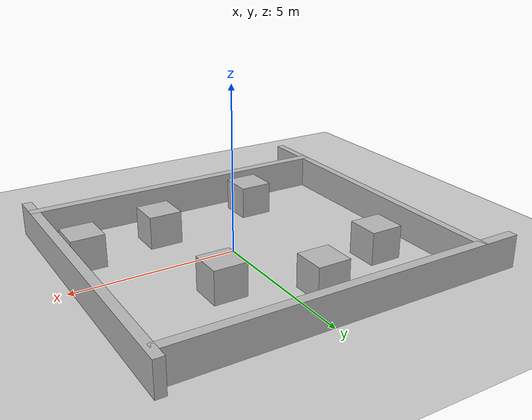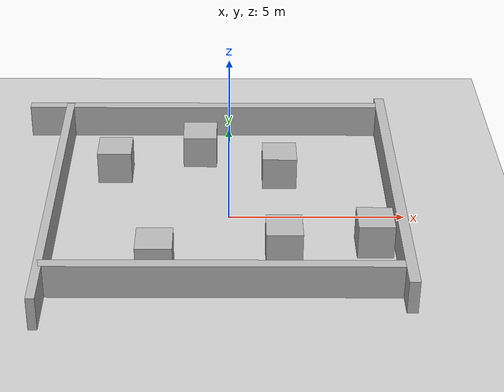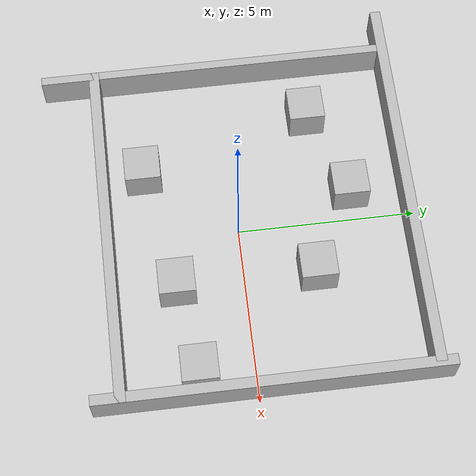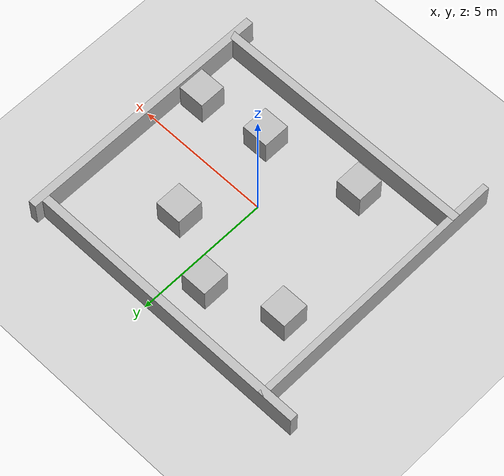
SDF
<sdf version="1.7">
 <world name="default">
  <model name="ground_plane">
   <static>1</static>
   <link name="link">
    <collision name="collision">
     <geometry><plane><normal>0 0 1</normal><size>100 100</size></plane></geometry>
     <surface>
      <contact><collide_bitmask>65535</collide_bitmask></contact>
      <friction><ode><mu>100</mu><mu2>50</mu2></ode></friction>
     </surface>
    </collision>
    <visual name="visual">
     <cast_shadows>0</cast_shadows>
     <geometry><plane><normal>0 0 1</normal><size>100 100</size></plane></geometry>
     <material>
      <script><uri>file://media/materials/scripts/gazebo.material</uri><name>Gazebo/Grey</name></script>
     </material>
    </visual>
   </link>
  </model>
  <light name="sun" type="directional">
   <pose>0 0 10 0 -0 0</pose>
   <diffuse>0.8 0.8 0.8 1</diffuse>
   <specular>0.2 0.2 0.2 1</specular>
   <attenuation>
    <range>1000</range>
    <constant>0.9</constant>
    <linear>0.01</linear>
    <quadratic>0.001</quadratic>
   </attenuation>
   <direction>-0.5 0.1 -0.9</direction>
   <spot><inner_angle>0</inner_angle><outer_angle>0</outer_angle><falloff>0</falloff></spot>
  </light>
  <gravity>0 0 -9.81</gravity>
  <physics name="default_physics" type="ode">
   <max_step_size>0.001</max_step_size>
   <real_time_factor>1</real_time_factor>
   <real_time_update_rate>1000</real_time_update_rate>
  </physics>
  <scene><ambient>0.4 0.4 0.4 1</ambient><background>0.7 0.7 0.7 1</background><shadows>1</shadows></scene>
  <model name="obstacle_2">
   <static>1</static>
   <pose>1.48313 2.0141 0.5 0 -0 0</pose>
   <link name="link">
    <collision name="collision"><geometry><box><size>1 1 1</size></box></geometry></collision>
    <visual name="visual"><geometry><box><size>1 1 1</size></box></geometry></visual>
   </link>
  </model>
  <model name="obstacle_3">
   <static>1</static>
   <pose>4 -1.5 0.5 0 -0 0</pose>
   <link name="link">
    <collision name="collision"><geometry><box><size>1 1 1</size></box></geometry></collision>
    <visual name="visual"><geometry><box><size>1 1 1</size></box></geometry></visual>
   </link>
  </model>
  <model name="obstacle_4">
   <static>1</static>
   <pose>-0.871226 3.24533 0.5 0 -0 0</pose>
   <link name="link">
    <collision name="collision"><geometry><box><size>1 1 1</size></box></geometry></collision>
    <visual name="visual"><geometry><box><size>1 1 1</size></box></geometry></visual>
   </link>
  </model>
  <model name="obstacle_5">
   <static>1</static>
   <pose>-3.38103 2.33048 0.5 0 -0 0</pose>
   <link name="link">
    <collision name="collision"><geometry><box><size>1 1 1</size></box></geometry></collision>
    <visual name="visual"><geometry><box><size>1 1 1</size></box></geometry></visual>
   </link>
  </model>
  <model name="obstacle_7">
   <static>1</static>
   <pose>-2 -2.5 0.5 0 -0 0</pose>
   <link name="link">
    <collision name="collision"><geometry><box><size>1 1 1</size></box></geometry></collision>
    <visual name="visual"><geometry><box><size>1 1 1</size></box></geometry></visual>
   </link>
  </model>
  <model name="obstacle_8">
   <static>1</static>
   <pose>1.49781 -1.86702 0.5 0 -0 0</pose>
   <link name="link">
    <collision name="collision"><geometry><box><size>1 1 1</size></box></geometry></collision>
    <visual name="visual"><geometry><box><size>1 1 1</size></box></geometry></visual>
   </link>
  </model>
  <model name="wall_1">
   <static>1</static>
   <pose>-0.73626 4.81188 0.5 0 -0 0</pose>
   <link name="link">
    <collision name="collision"><geometry><box><size>10.9348 0.3 1</size></box></geometry></collision>
    <visual name="visual"><geometry><box><size>10.9348 0.3 1</size></box></geometry></visual>
   </link>
  </model>
  <model name="wall_2">
   <static>1</static>
   <pose>-0.104175 -3.63327 0.5 0 -0 0</pose>
   <link name="link">
    <collision name="collision"><geometry><box><size>9.94458 0.3 1</size></box></geometry></collision>
    <visual name="visual"><geometry><box><size>9.94458 0.3 1</size></box></geometry></visual>
   </link>
  </model>
  <magnetic_field>6e-06 2.3e-05 -4.2e-05</magnetic_field>
  <atmosphere type="adiabatic"/>
  <audio><device>default</device></audio>
  <spherical_coordinates>
   <surface_model>EARTH_WGS84</surface_model>
   <latitude_deg>0</latitude_deg>
   <longitude_deg>0</longitude_deg>
   <elevation>0</elevation>
   <heading_deg>0</heading_deg>
  </spherical_coordinates>
  <model name="wall_3">
   <link name="link">
    <visual name="visual">
     <geometry><box><size>0.297183 9.69025 1</size></box></geometry>
     <material><shader type="pixel"/></material>
    </visual>
    <collision name="collision">
     <geometry><box><size>0.297183 9.69025 1</size></box></geometry>
     <surface>
      <friction>
       <ode><mu>1</mu><mu2>1</mu2><fdir1>0 0 0</fdir1><slip1>0</slip1><slip2>0</slip2></ode>
       <torsional>
        <coefficient>1</coefficient>
        <patch_radius>0</patch_radius>
        <surface_radius>0</surface_radius>
        <use_patch_radius>1</use_patch_radius>
        <ode><slip>0</slip></ode>
       </torsional>
      </friction>
      <bounce><restitution_coefficient>0</restitution_coefficient><threshold>1e+06</threshold></bounce>
      <contact>
       <collide_without_contact>0</collide_without_contact>
       <collide_without_contact_bitmask>1</collide_without_contact_bitmask>
       <collide_bitmask>1</collide_bitmask>
       <ode>
        <soft_cfm>0</soft_cfm>
        <soft_erp>0.2</soft_erp>
        <kp>1e+13</kp>
        <kd>1</kd>
        <max_vel>0.01</max_vel>
        <min_depth>0</min_depth>
       </ode>
       <bullet>
        <split_impulse>1</split_impulse>
        <split_impulse_penetration_threshold>-0.01</split_impulse_penetration_threshold>
        <soft_cfm>0</soft_cfm>
        <soft_erp>0.2</soft_erp>
        <kp>1e+13</kp>
        <kd>1</kd>
       </bullet>
      </contact>
     </surface>
    </collision>
   </link>
   <static>1</static>
   <pose>4.72357 0.419514 0.5 0 -0 0</pose>
  </model>
  <model name="wall_4">
   <link name="link">
    <visual name="visual">
     <geometry><box><size>0.239698 10.0953 1</size></box></geometry>
     <material><shader type="pixel"/></material>
    </visual>
    <collision name="collision">
     <geometry><box><size>0.239698 10.0953 1</size></box></geometry>
     <surface>
      <friction>
       <ode><mu>1</mu><mu2>1</mu2><fdir1>0 0 0</fdir1><slip1>0</slip1><slip2>0</slip2></ode>
       <torsional>
        <coefficient>1</coefficient>
        <patch_radius>0</patch_radius>
        <surface_radius>0</surface_radius>
        <use_patch_radius>1</use_patch_radius>
        <ode><slip>0</slip></ode>
       </torsional>
      </friction>
      <bounce><restitution_coefficient>0</restitution_coefficient><threshold>1e+06</threshold></bounce>
      <contact>
       <collide_without_contact>0</collide_without_contact>
       <collide_without_contact_bitmask>1</collide_without_contact_bitmask>
       <collide_bitmask>1</collide_bitmask>
       <ode>
        <soft_cfm>0</soft_cfm>
        <soft_erp>0.2</soft_erp>
        <kp>1e+13</kp>
        <kd>1</kd>
        <max_vel>0.01</max_vel>
        <min_depth>0</min_depth>
       </ode>
       <bullet>
        <split_impulse>1</split_impulse>
        <split_impulse_penetration_threshold>-0.01</split_impulse_penetration_threshold>
        <soft_cfm>0</soft_cfm>
        <soft_erp>0.2</soft_erp>
        <kp>1e+13</kp>
        <kd>1</kd>
       </bullet>
      </contact>
     </surface>
    </collision>
   </link>
   <static>1</static>
   <pose>-4.96255 -0.097858 0.5 0 -0 0</pose>
  </model>
 </world>
</sdf>
